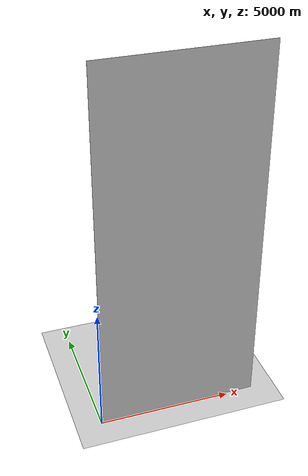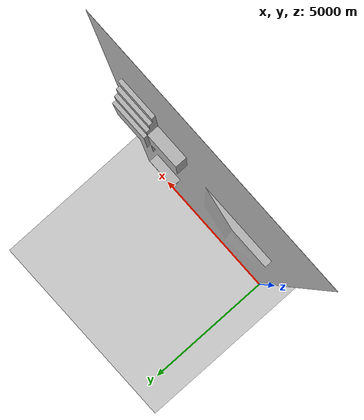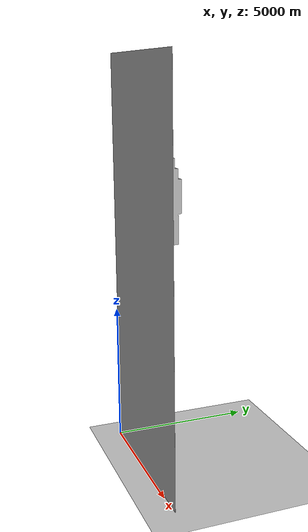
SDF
<?xml version="1.0" ?>
<sdf version="1.7">
  <world name="sw_world">

    <!-- 光源 -->
    <include>
      <uri>model://sun</uri>
    </include>

    <!-- 地面 -->
    <include>
      <uri>model://ground_plane</uri>
    </include>

    <!-- STEP 场景 -->
    <model name="my_scene">
      <static>true</static>

      <link name="scene_link">

        <!-- 碰撞 -->
        <collision name="collision">
          <geometry>
            <mesh>
              <uri>model://dog/world_mesh/scene.stl</uri>
              <scale>1 1 1</scale>
            </mesh>
          </geometry>
        </collision>

        <!-- 视觉 -->
        <visual name="visual">
          <geometry>
            <mesh>
              <uri>model://dog/world_mesh/scene.dae</uri>
              <scale>1 1 1</scale>
            </mesh>
          </geometry>
        </visual>

      </link>
    </model>

  </world>
</sdf>
